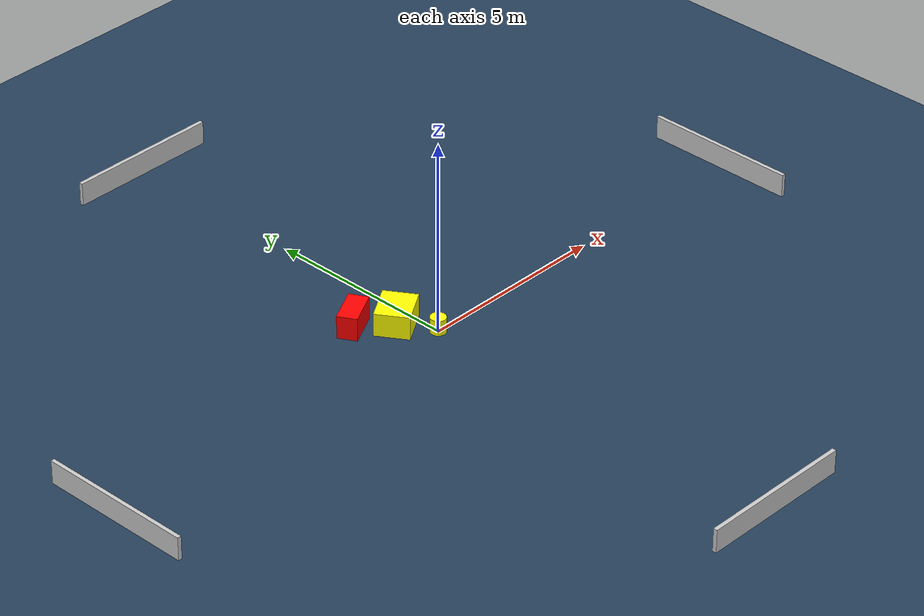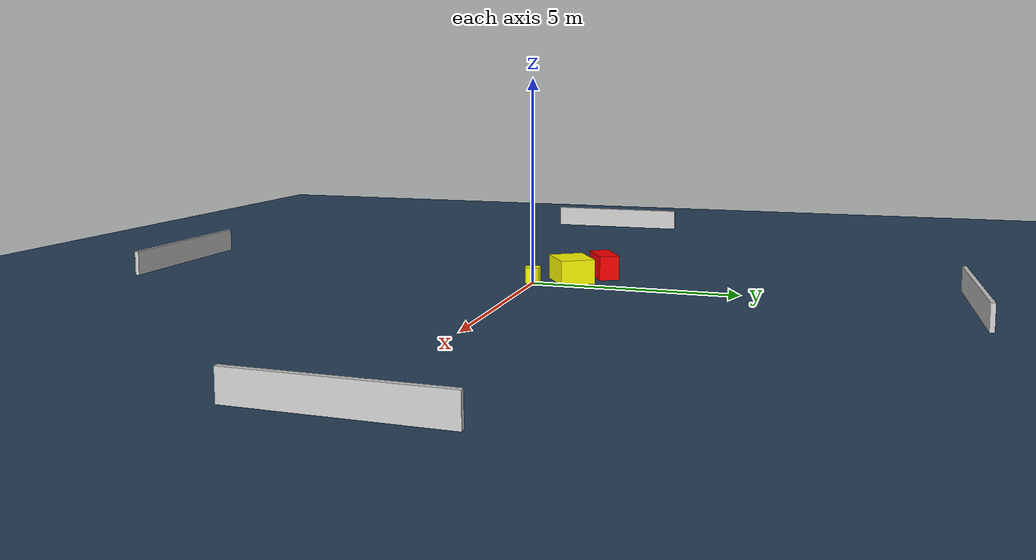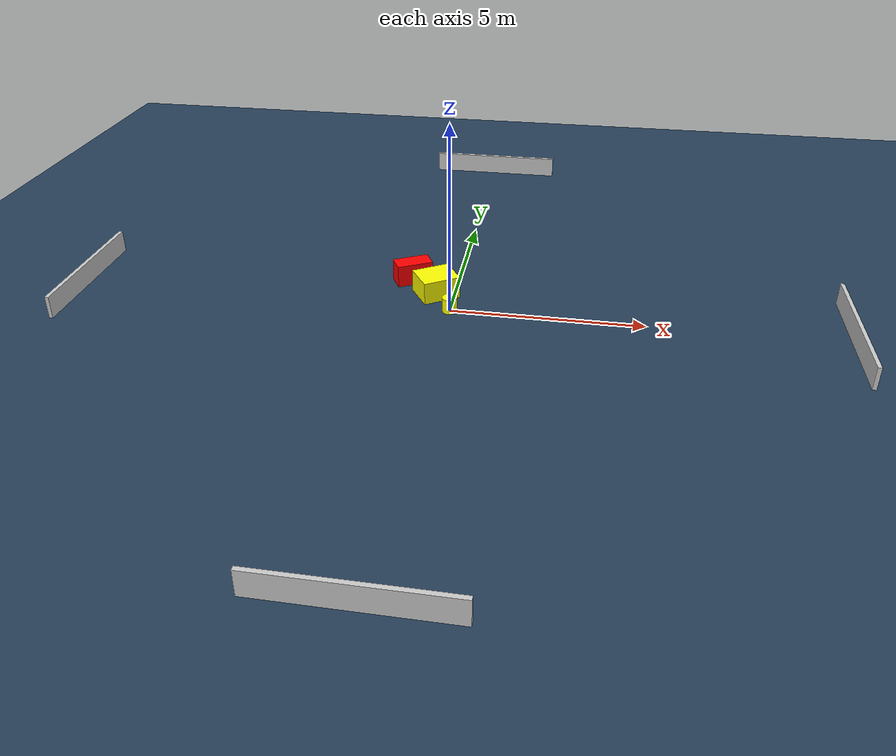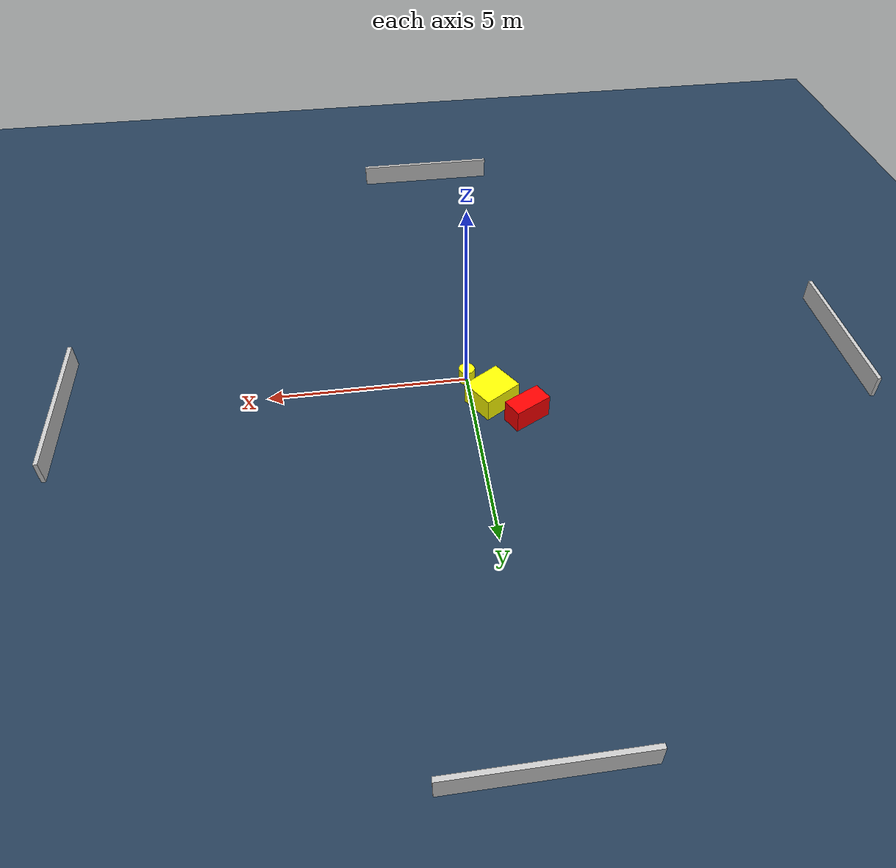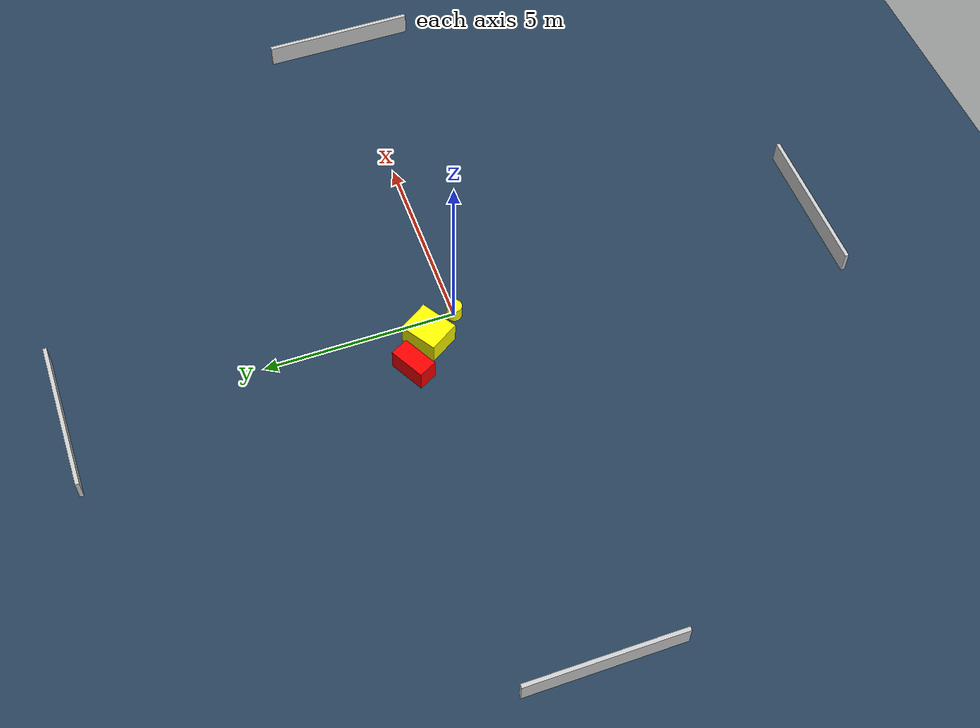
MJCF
<?xml version="1.0" ?>
<mujoco model="generated_environment">
  <option timestep="0.01" integrator="RK4" cone="elliptic"/>
  <default>
    <geom density="1"/>
  </default>
  <asset>
    <texture builtin="gradient" height="3072" name="skybox" rgb1="0.3 0.5 0.7" rgb2="0 0 0" type="skybox" width="512"/>
    <texture builtin="checker" height="300" name="groundplane" rgb1="0.2 0.3 0.4" rgb2="0.1 0.2 0.3" type="2d" width="300"/>
    <material name="groundplane" reflectance="0.2" texrepeat="5 5" texture="groundplane"/>
  </asset>
  <worldbody>
    <light dir="0 0 -1" directional="true" pos="0 0 1.5"/>
    <geom condim="3" friction="0.5 0.005 0.001" material="groundplane" name="floor" pos="0 0 0" size="0 0 0.05" type="plane"/>
    <body name="walls">
      <geom name="wall_1" condim="4" pos="-10.0 0.0 0.3" rgba="0.800000011920929 0.800000011920929 0.800000011920929 1.0" size="0.05 2.0 0.3" type="box"/>
      <geom name="wall_2" condim="4" pos="10.0 0.0 0.3" rgba="0.800000011920929 0.800000011920929 0.800000011920929 1.0" size="0.05 2.0 0.3" type="box"/>
      <geom name="wall_3" condim="4" pos="0.0 -10.0 0.3" rgba="0.800000011920929 0.800000011920929 0.800000011920929 1.0" size="2.0 0.05 0.3" type="box"/>
      <geom name="wall_4" condim="4" pos="0.0 10.0 0.3" rgba="0.800000011920929 0.800000011920929 0.800000011920929 1.0" size="2.0 0.05 0.3" type="box"/>
    </body>
    <body name="robot">
      <joint name="joint_x" type="slide" pos="0 0 0" axis="1 0 0"/>
      <joint name="joint_y" type="slide" pos="0 0 0" axis="0 1 0"/>
      <geom name="robot" type="cylinder" pos="0.0 0.0 0.2" size="0.2 0.2 0.0" mass="5.0" friction="1.0 0.005 0.0001" condim="4" rgba="1.0 1.0 0.0 1.0"/>
    </body>
    <body name="obstacle_1_movable">
      <geom name="obstacle_1_movable" condim="4" pos="-0.5053086945945638 0.8536394025354571 0.3" euler="0 0 302.38544648170904" friction="0.0 0.005 0.001" rgba="1.0 1.0 0.0 1.0" size="0.43268421823189496 0.507356475440669 0.3" type="box" mass="0.1"/>
      <joint type="free"/>
    </body>
    <body name="obstacle_2_static">
      <geom name="obstacle_2_static" condim="4" pos="-1.2627162020260392 1.5042514058495542 0.3" euler="0 0 28.17187197791018" friction="0.0 0.005 0.001" rgba="1.0 0.0 0.0 1.0" size="0.4898097471461161 0.2516622471979966 0.3" type="box"/>
    </body>
  </worldbody>
  <actuator>
    <motor name="actuator_x" joint="joint_x" gear="1" ctrlrange="-1 1"/>
    <motor name="actuator_y" joint="joint_y" gear="1" ctrlrange="-1 1"/>
  </actuator>
</mujoco>
